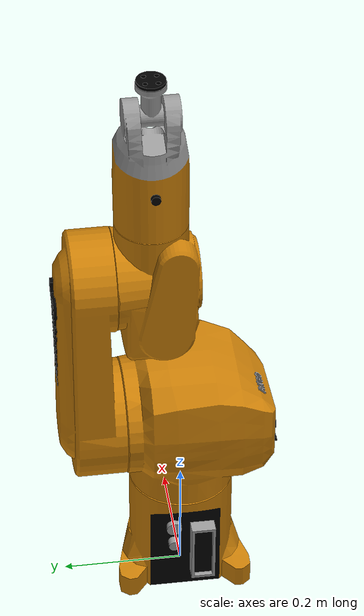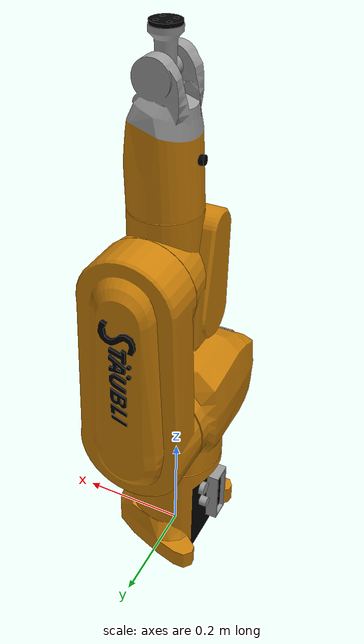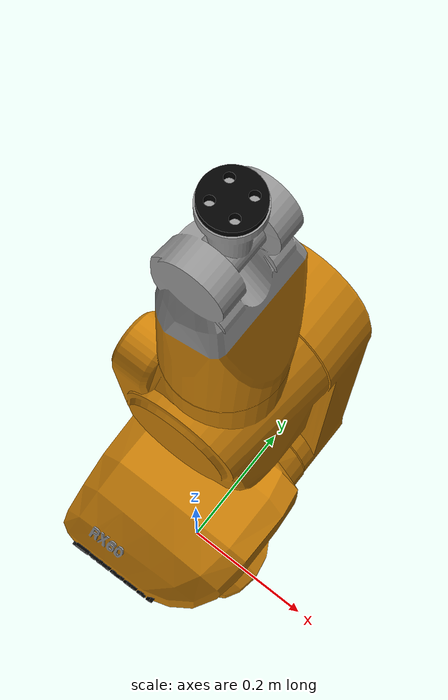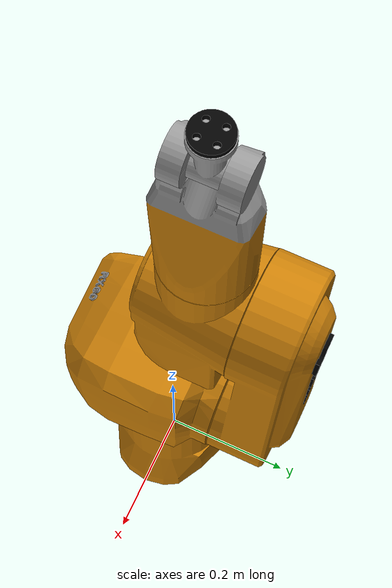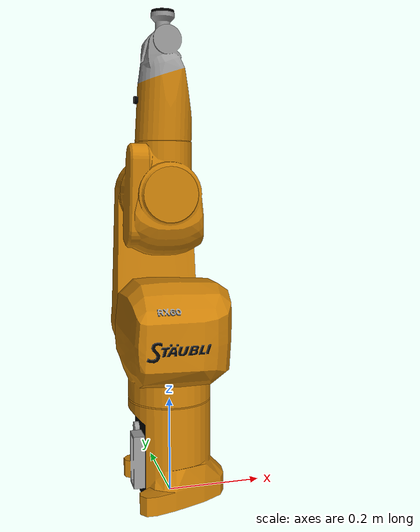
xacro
<?xml version="1.0"?>
<robot name="rx60" xmlns:xacro="http://ros.org/wiki/xacro">

  <!-- Import transmission and gazebo elements -->
  <xacro:include filename="$(find rx60_description)/urdf/rx60.transmission.xacro"/>
  <xacro:include filename="$(find rx60_description)/urdf/rx60.gazebo.xacro"/>

  <!-- Links -->

  <link name="base_link">
    <inertial>
      <!-- geschaetzte Werte -->
      <origin xyz="0 0 0.2" rpy="0 0 0"/>
      <mass value="7"/>
      <inertia
        ixx="0.02" ixy="0.0"  ixz="0.0"
        iyy="0.02" iyz="0.0"
        izz="0.2"/>
    </inertial>

    <visual>
      <origin xyz="0 0 0" rpy="0 0 0"/>
      <geometry>
        <mesh filename="package://rx60_description/meshes/base.dae" scale="1 1 1"/>
      </geometry>
    </visual>

    <collision>
      <origin xyz="0 0 0.025" rpy="0 0 0"/>
      <geometry>
        <cylinder radius="0.12" length="0.05"/>
      </geometry>
    </collision>
    <collision>
      <origin xyz="0 0 0.11" rpy="0 0 0"/>
      <geometry>
        <cylinder radius="0.09" length="0.185"/>
      </geometry>
    </collision>
  </link>

  <link name="shoulder_link">
    <inertial>
      <!-- geschaetzte Werte -->
      <origin xyz="0 0 0" rpy="0 0 0"/>
      <mass value="10"/>
      <inertia
        ixx="0.066" ixy="0.0"   ixz="0.0"
        iyy="0.066" iyz="0.0"
        izz="0.066"/>
    </inertial>

    <visual>
      <origin xyz="0 0 0" rpy="0 0 0"/>
      <geometry>
        <mesh filename="package://rx60_description/meshes/shoulder.dae" scale="1 1 1"/>
      </geometry>
    </visual>

    <collision>
      <origin xyz="0 0 -0.085" rpy="0 0 0"/>
      <geometry>
        <cylinder radius="0.09" length="0.1"/>
      </geometry>
    </collision>
    <collision>
      <origin xyz="0 0.045 0" rpy="-1.5707963 0 0"/>
      <geometry>
        <cylinder radius="0.1" length="0.1"/>
      </geometry>
    </collision>
    <collision>
      <origin xyz="0.005 -0.034 0.014" rpy="0 0 0"/>
      <geometry>
        <box size="0.2 0.22 0.18"/>
      </geometry>
    </collision>
  </link>

  <link name="arm_link">
    <inertial>
      <!-- geschaetzte Werte -->
      <origin xyz="0 0 0.16" rpy="0 0 0"/>
      <mass value="10"/>
      <inertia
        ixx="0.7" ixy="0.0" ixz="0.0"
        iyy="0.0" iyz="0.0"
        izz="0.7"/>
    </inertial>

    <visual>
      <origin xyz="0 0 0" rpy="0 0 1.5707963"/>
      <geometry>
        <mesh filename="package://rx60_description/meshes/arm.dae" scale="1 1 1"/>
      </geometry>
    </visual>

    <collision>
      <origin xyz="0.14 0 0.16" rpy="0 0 0"/>
      <geometry>
        <box size="0.47 0.18 0.09"/>
      </geometry>
    </collision>
  </link>

  <link name="elbow_link">
    <inertial>
      <!-- geschaetzte Werte -->
      <origin xyz="0 0 0" rpy="0 0 0"/>
      <mass value="8"/>
      <inertia
        ixx="0.035" ixy="0.0"   ixz="0.0"
        iyy="0.035" iyz="0.0"
        izz="0.35"/>
    </inertial>

    <visual>
      <origin xyz="0 0 0" rpy="3.1415926 0 1.5707963"/>
      <geometry>
        <mesh filename="package://rx60_description/meshes/elbow.dae" scale="1 1 1"/>
      </geometry>
    </visual>

    <collision>
      <origin xyz="0 0 -0.007" rpy="0 0 0"/>
      <geometry>
        <box size="0.21 0.16 0.135"/>
      </geometry>
    </collision>
  </link>

  <link name="forearm_link">
    <inertial>
      <!-- geschaetzte Werte -->
      <origin xyz="0 0 0.18" rpy="0 0 0"/>
      <mass value="4"/>
      <inertia
        ixx="0.012" ixy="0.0"   ixz="0.0"
        iyy="0.012" iyz="0.0"
        izz="0.007"/>
    </inertial>

    <visual>
      <origin xyz="0 0 0" rpy="0 0 0"/>
      <geometry>
        <mesh filename="package://rx60_description/meshes/forearm.dae" scale="1 1 1"/>
      </geometry>
    </visual>

    <collision>
      <origin xyz="0 0 0.18" rpy="0 0 0"/>
      <geometry>
        <cylinder radius="0.06" length="0.14"/>
      </geometry>
    </collision>
    <collision>
      <origin xyz="0 0.035 0.31" rpy="-1.5707963 0 0"/>
      <geometry>
        <cylinder radius="0.029" length="0.02"/>
      </geometry>
    </collision>
    <collision>
      <origin xyz="0 -0.035 0.31" rpy="-1.5707963 0 0"/>
      <geometry>
        <cylinder radius="0.029" length="0.02"/>
      </geometry>
    </collision>
  </link>

  <link name="wrist_link">
    <inertial>
      <!-- geschaetzte Werte -->
      <origin xyz="0 0 0" rpy="0 0 0"/>
      <mass value="1"/>
      <inertia
        ixx="0.001" ixy="0.0"   ixz="0.0"
        iyy="0.001" iyz="0.0"
        izz="0.001"/>
    </inertial>

    <visual>
      <origin xyz="0 0 0" rpy="3.1415926 0 1.5707963"/>
      <geometry>
        <mesh filename="package://rx60_description/meshes/wrist.dae" scale="1 1 1"/>
      </geometry>
    </visual>

    <collision>
      <origin xyz="0.025 0 0" rpy="0 -1.5707963 0"/>
      <geometry>
        <cylinder radius="0.017" length="0.05"/>
      </geometry>
    </collision>
  </link>

  <link name="tool_link">
    <inertial>
      <!-- geschaetzte Werte -->
      <origin xyz="0 0 0" rpy="0 0 0"/>
      <mass value="1"/>
      <inertia
        ixx="0.001" ixy="0.0"   ixz="0.0"
        iyy="0.001" iyz="0.0"
        izz="0.001"/>
    </inertial>

    <visual>
      <origin xyz="0 0 0" rpy="0 0 0"/>
      <geometry>
        <mesh filename="package://rx60_description/meshes/tool.dae" scale="1 1 1"/>
      </geometry>
    </visual>

    <collision>
      <origin xyz="0 0 -0.005" rpy="0 0 0"/>
      <geometry>
        <cylinder radius="0.023" length="0.01"/>
      </geometry>
    </collision>
  </link>

  <!-- Joints -->
  <joint name="joint1" type="revolute">
    <origin xyz="0 0 0.341" rpy="0 0 0"/>
    <parent link="base_link"/>
    <child link="shoulder_link"/>
    <axis xyz="0 0 1"/>
    <limit lower="-2.7925" upper="2.7925" velocity="5" effort="330.0"/>
    <dynamics friction="0.001" damping="1"/>
  </joint>

  <joint name="joint2" type="revolute">
    <origin xyz="0 0 0" rpy="-1.5707963 -1.5707963 0"/>
    <parent link="shoulder_link"/>
    <child link="arm_link"/>
    <axis xyz="0 0 1"/>
    <limit lower="-2.2253" upper="2.2253" velocity="5" effort="330.0"/>
    <dynamics friction="0.001" damping="1"/>
  </joint>

  <joint name="joint3" type="revolute">
    <origin xyz="0.290 0 0.049" rpy="0 0 0"/>
    <parent link="arm_link"/>
    <child link="elbow_link"/>
    <axis xyz="0 0 1"/>
    <limit lower="-2.3474" upper="2.3474" velocity="5.5" effort="150.0"/>
    <dynamics friction="0.001" damping="1"/>
  </joint>

  <joint name="joint4" type="revolute">
    <origin xyz="0 0 0" rpy="1.5707963 0 1.5707963"/>
    <parent link="elbow_link"/>
    <child link="forearm_link"/>
    <axis xyz="0 0 1"/>
    <limit lower="-4.7123" upper="4.7123" velocity="7.1" effort="54.0"/>
    <dynamics friction="0.001" damping="1"/>
  </joint>

  <joint name="joint5" type="revolute">
    <origin xyz="0 0 0.310" rpy="-1.5707963 -1.5707963 0"/>
    <parent link="forearm_link"/>
    <child link="wrist_link"/>
    <axis xyz="0 0 1"/>
    <limit lower="-1.9111" upper="2.1031" velocity="5.5" effort="54.0"/>
    <dynamics friction="0.001" damping="1"/>
  </joint>

  <joint name="joint6" type="revolute">
    <origin xyz="0.065 0 0" rpy="1.5707963 0 1.5707963"/>
    <parent link="wrist_link"/>
    <child link="tool_link"/>
    <axis xyz="0 0 1"/>
    <limit lower="-4.7124" upper="4.7124" velocity="12.2" effort="32.0"/>
    <dynamics friction="0.001" damping="1"/>
  </joint>

</robot>

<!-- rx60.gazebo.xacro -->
<robot xmlns:xacro="http://ros.org/wiki/xacro">

  <!-- ros_control plugin -->
  <gazebo>
    <plugin name="gazebo_ros_control" filename="libgazebo_ros_control.so">
      <robotNamespace>/rx60</robotNamespace>
      <robotSimType>gazebo_ros_control/DefaultRobotHWSim</robotSimType>
    </plugin>
  </gazebo>

  <!-- Link1 -->
  <gazebo reference="base_link">
    <selfCollide>true</selfCollide>
  </gazebo>
  <!-- Link2 -->
  <gazebo reference="shoulder_link">
    <selfCollide>true</selfCollide>
  </gazebo>
  <!-- Link3 -->
  <gazebo reference="arm_link">
    <selfCollide>true</selfCollide>
  </gazebo>
  <!-- Link4 -->
  <gazebo reference="elbow_link">
    <selfCollide>true</selfCollide>
  </gazebo>
  <!-- Link5 -->
  <gazebo reference="forearm_link">
    <selfCollide>true</selfCollide>
  </gazebo>
  <!-- Link6 -->
  <gazebo reference="wrist_link">
    <selfCollide>true</selfCollide>
  </gazebo>
  <!-- Link7 -->
  <gazebo reference="tool_link">
    <selfCollide>true</selfCollide>
  </gazebo>

  <!-- Joint1 -->
  <gazebo reference="joint1">
    <provideFeedback>true</provideFeedback>
  </gazebo>
  <!-- Joint2 -->
  <gazebo reference="joint2">
    <provideFeedback>true</provideFeedback>
  </gazebo>
  <!-- Joint3 -->
  <gazebo reference="joint3">
    <provideFeedback>true</provideFeedback>
  </gazebo>
  <!-- Joint4 -->
  <gazebo reference="joint4">
    <provideFeedback>true</provideFeedback>
  </gazebo>
  <!-- Joint5 -->
  <gazebo reference="joint5">
    <provideFeedback>true</provideFeedback>
  </gazebo>
  <!-- Joint6 -->
  <gazebo reference="joint6">
    <provideFeedback>true</provideFeedback>
  </gazebo>

  <!-- fix base_link to Gazebo world -->
  <link name="world"/>

  <joint name="fixed" type="fixed">
    <parent link="world"/>
    <child link="base_link"/>
  </joint>

</robot>
